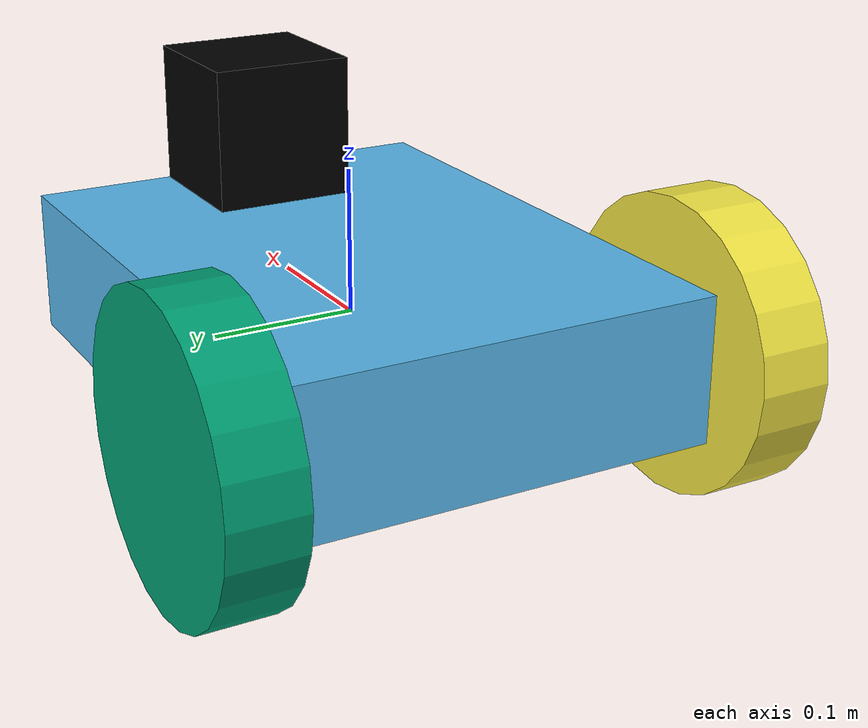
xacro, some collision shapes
<?xml version='1.0'?>

<robot name="my_robot" xmlns:xacro="http://www.ros.org/wiki/xacro">

  <xacro:include filename="$(find my_robot)/urdf/my_robot.gazebo" />

  <link name="robot_footprint"></link>

  <joint name="robot_footprint_joint" type="fixed">
    <origin xyz="0 0 0" rpy="0 0 0" />
    <parent link="robot_footprint"/>
    <child link="chassis" />
  </joint>

  <link name='chassis'>
    <pose>0 0 0.1 0 0 0</pose>

    <inertial>
      <mass value="15.0"/>
      <origin xyz="0.0 0 0" rpy=" 0 0 0"/>
      <inertia
          ixx="0.1" ixy="0" ixz="0"
          iyy="0.1" iyz="0"
          izz="0.1"
      />
    </inertial>

    <collision name='collision'>
      <origin xyz="0 0 0" rpy=" 0 0 0"/>
      <geometry>
        <box size=".4 .3 .1"/>
      </geometry>
    </collision>

    <visual name='chassis_visual'>
      <origin xyz="0 0 0" rpy=" 0 0 0"/>
      <geometry>
        <box size=".4 .3 .1"/>
      </geometry>
    </visual>

    <collision name='front_caster_collision'>
      <origin xyz="0.15 0 -0.05" rpy=" 0 0 0"/>
      <geometry>
        <sphere radius="0.0499"/>
      </geometry>
    </collision>

    <visual name='front_caster_visual'>
      <origin xyz="0.15 0 -0.05" rpy=" 0 0 0"/>
      <geometry>
        <sphere radius="0.05"/>
      </geometry>
    </visual>

  </link>

  <link name='left_wheel'>
    <visual name='left_wheel_visual'>
      <origin xyz="0 0.025 0" rpy="0 1.5707 1.5707"/>
      <geometry>
        <cylinder radius="0.1" length="0.05"/>
      </geometry>
    </visual>

    <collision name='left_wheel_collision'>
      <origin xyz="0 0.025 0" rpy="0 1.5707 1.5707"/>
      <geometry>
        <cylinder radius="0.1" length="0.05"/>
      </geometry>
    </collision>

    <inertial>
      <mass value="5"/>
      <inertia
          ixx="0.1" ixy="0" ixz="0"
          iyy="0.1" iyz="0"
          izz="0.1"
      />
    </inertial>

  </link>

  <link name='right_wheel'>
    <visual name='right_wheel_visual'>
      <origin xyz="0 -0.025 0" rpy="0 1.5707 1.5707"/>
      <geometry>
        <cylinder radius="0.1" length="0.05"/>
      </geometry>
    </visual>

    <collision name='right_wheel_collision'>
      <origin xyz="0 -0.025 0" rpy="0 1.5707 1.5707"/>
      <geometry>
        <cylinder radius="0.1" length="0.05"/>
      </geometry>
    </collision>

    <inertial>
      <mass value="5"/>
      <inertia
          ixx="0.1" ixy="0" ixz="0"
          iyy="0.1" iyz="0"
          izz="0.1"
      />

    </inertial>

  </link>

  <link name="camera">

    <visual name='camera_visual'>
      <origin xyz="0 0 0" rpy="0 0 0"/>
      <geometry>
        <box size=".05 .05 .05"/>
      </geometry>
    </visual>

    <collision name='camera_collision'>
      <origin xyz="0 0 0" rpy="0 0 0"/>
      <geometry>
        <box size=".05 .05 .05"/>
      </geometry>
    </collision>

    <inertial>
      <mass value="0.1"/>
      <inertia
          ixx="1e-6" ixy="0" ixz="0"
          iyy="1e-6" iyz="0"
          izz="1e-6"
      />

    </inertial>
  </link>

  <link name="hokuyo">

    <visual name='hokuyo_visual'>
      <origin xyz="0 0 0" rpy="0 0 0"/>
      <geometry>
        <mesh filename="package://my_robot/meshes/hokuyo.dae"/>
      </geometry>
      <material name="black">
        <color rgba="0 0 0 0"/>
      </material>
    </visual>

    <collision name='hokuyo_collision'>
      <geometry>
        <box size="0.1 0.1 0.1"/>
      </geometry>
    </collision>

    <inertial>
      <mass value="1e-5"/>
      <inertia
        ixx="1e-6" ixy="0" ixz="0"
        iyy="1e-6" iyz="0"
        izz="1e-6"
      />
    </inertial>

  </link>

  <joint type="continuous" name="left_wheel_hinge">
    <origin xyz="-0.15 0.15 0" rpy="0 0 0"/>
    <child link="left_wheel"/>
    <parent link="chassis"/>
    <axis xyz="0 1 0" rpy="0 0 0"/>
    <limit effort="10000" velocity="1000"/>
    <dynamics damping="1.0" friction="1.0"/>
  </joint>

  <joint type="continuous" name="right_wheel_hinge">
    <origin xyz="-0.15 -0.15 0" rpy="0 0 0"/>
    <child link="right_wheel"/>
    <parent link="chassis"/>
    <axis xyz="0 1 0" rpy="0 0 0"/>
    <limit effort="10000" velocity="1000"/>
    <dynamics damping="1.0" friction="1.0"/>
  </joint>

  <joint type="fixed" name="camera_joint">
    <origin xyz="0.2 0 0" rpy="0 0 0"/>
    <child link="camera"/>
    <parent link="chassis"/>
    <axis xyz="0 1 0" rpy="0 0 0"/>
  </joint>

  <joint type="fixed" name="hokuyo_joint">
    <origin xyz="0.15 0 0.1" rpy="0 0 0"/>
    <child link="hokuyo"/>
    <parent link="chassis"/>
    <axis xyz="0 1 0" rpy="0 0 0"/>

  </joint>

</robot>
